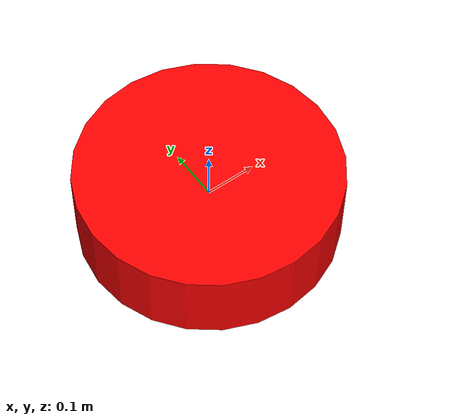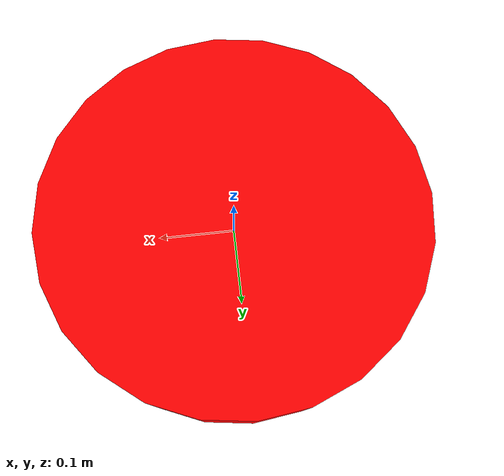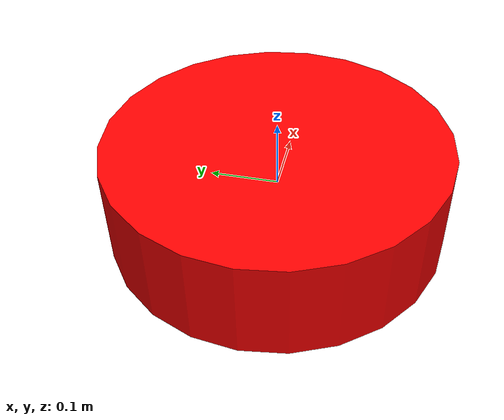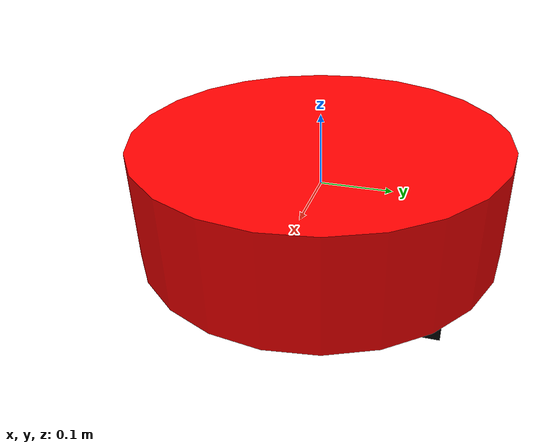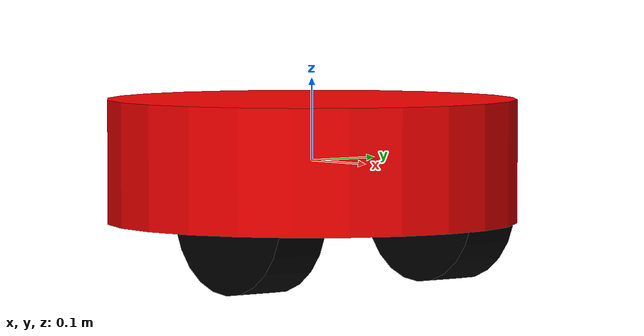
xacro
<?xml version="1.0"?>
<robot xmlns:xacro="http://www.ros.org/wiki/xacro" name="myrobot">

  <link name="base_link">
      <inertial>
          <origin xyz="0.0 0.0 0.0" rpy="0.0 0.0 0.0"/>
          <mass value="5.0"/>
          <inertia ixx="0.0" ixy="0.0" ixz="0.0" iyy="0.0" iyz="0.0" izz="0.0"/>
      </inertial>
      <visual>
          <origin xyz="0.0 0.0 0.0" rpy="0.0 0.0 0.0"/>
          <geometry>
             <cylinder radius="0.25" length="0.15"/>
          </geometry>
          <material name="red">
              <color rgba="1.0 0.0 0.0 1.0"/>
          </material>
      </visual>
      <collision>
          <origin xyz="0.0 0.0 0.0" rpy="0.0 0.0 0.0"/>
          <geometry>
             <cylinder radius="0.5" length="0.15"/>
          </geometry>
      </collision>
  </link>

    <link name="left_wheel">
      <inertial>
          <origin xyz="0.0 0.0 0.0" rpy="0.0 0.0 0.0"/>
          <mass value="1.0"/>
          <inertia ixx="0.001" ixy="0.0" ixz="0.0" iyy="0.001" iyz="0.0" izz="0.001"/>
      </inertial>
      <visual>
          <origin xyz="0.0 0.0 0.0" rpy="0.0 0.0 0.0"/>
          <geometry>
              <cylinder radius="0.1" length="0.07"/>
          </geometry>
          <material name="black">
              <color rgba="0.0 0.0 0.0 1.0"/>
          </material>
      </visual>
      <collision>
          <origin xyz="0.0 0.0 0.0" rpy="0.0 0.0 0.0"/>
          <geometry>
              <cylinder radius="0.1" length="0.07"/>
          </geometry>
      </collision>
  </link>

  <link name="right_wheel">
    <inertial>
        <origin xyz="0.0 0.0 0.0" rpy="0.0 0.0 0.0"/>
        <mass value="1.0"/>
        <inertia ixx="0.001" ixy="0.0" ixz="0.0" iyy="0.001" iyz="0.0" izz="0.001"/>
    </inertial>
    <visual name="right_wheel_visual">
        <origin xyz="0.0 0.0 0.0" rpy="0.0 0.0 0.0"/>
        <geometry>
          <cylinder radius="0.1" length="0.07"/>
        </geometry>
        <material name="black">
            <color rgba="0.0 0.0 0.0 1.0"/>
            <texture filename=""/>
        </material>
    </visual>
    <collision>
        <origin xyz="0.0 0.0 0.0" rpy="0.0 0.0 0.0"/>
        <geometry>
            <cylinder radius="0.1" length="0.07"/>
        </geometry>
    </collision>
  </link>

  <joint name="left_wheel_joint" type="continuous">
    <origin xyz="0.065 0.15 -0.05" rpy="0.0 1.5707 1.5707"/>
    <parent link="base_link"/>
    <child link="left_wheel"/>
    <axis xyz="0.0 0.0 1.0"/>
  </joint>

  <joint name="right_wheel_joint" type="continuous">
    <origin xyz="0.065 -0.15 -0.05" rpy="0.0 1.5707 1.5707"/>
    <parent link="base_link"/>
    <child link="right_wheel"/>
    <axis xyz="0.0 0.0 1.0"/>
  </joint>

  <link name="caster_wheel">
      <inertial>
          <mass value="0.2"/>
          <origin xyz="0 0 0" rpy="0 0 0"/>
          <inertia ixx="0.001" ixy="0.0" ixz="0.0" iyy="0.001" iyz="0.0" izz="0.001"/>
      </inertial>
      <visual>
          <origin xyz="0 0 0" rpy="0 0 0"/>
          <geometry>
              <sphere radius="0.05"/>
          </geometry>
          <material name="gray">
              <color rgba="0.5 0.5 0.5 1"/>
          </material>
      </visual>
      <collision>
          <origin xyz="0 0 0" rpy="0 0 0"/>
          <geometry>
              <sphere radius="0.05"/>
          </geometry>
      </collision>
  </link>

  <joint name="caster_wheel_joint" type="fixed">
      <parent link="base_link"/>
      <child link="caster_wheel"/>
      <origin xyz="-0.15 0 -0.1" rpy="0 0 0"/>
  </joint>

</robot>
